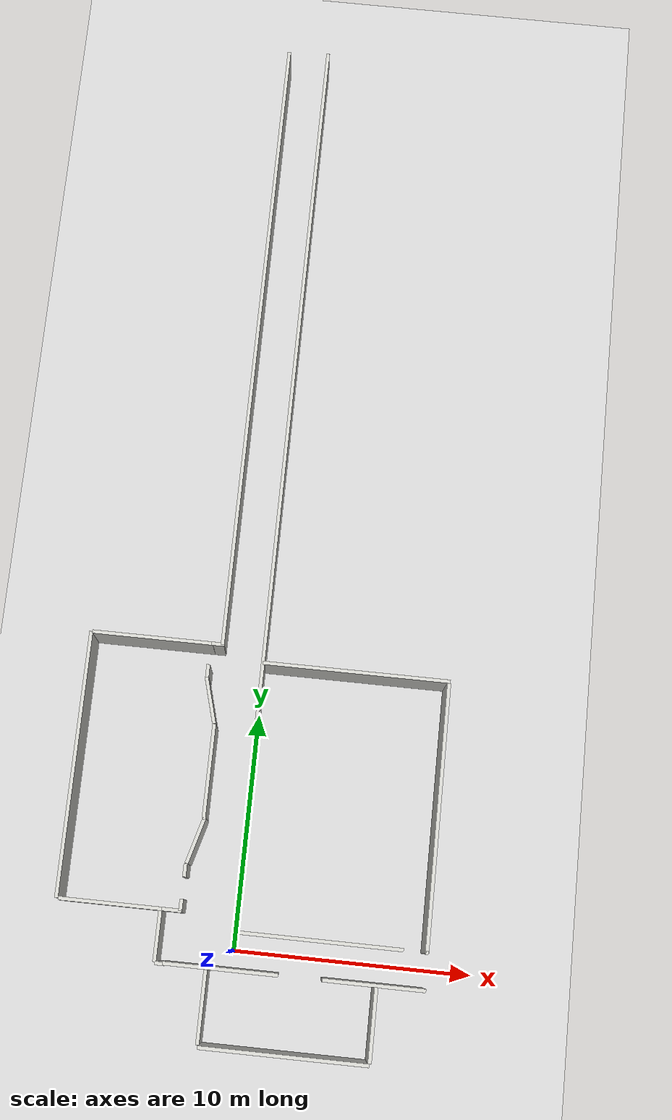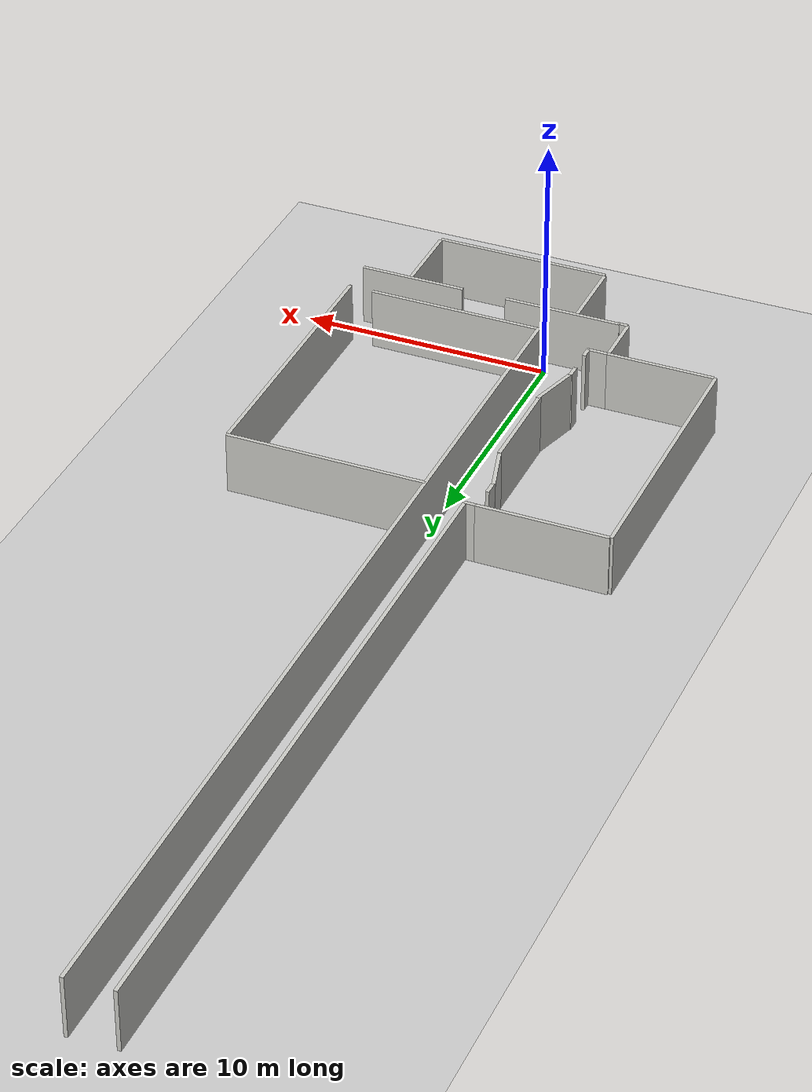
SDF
<sdf version="1.6">
 <world name="default">
  <light name="sun" type="directional">
   <pose>0 0 10 0 -0 0</pose>
   <diffuse>0.8 0.8 0.8 1</diffuse>
   <specular>0.1 0.1 0.1 1</specular>
   <attenuation>
    <range>1000</range>
    <constant>0.9</constant>
    <linear>0.01</linear>
    <quadratic>0.001</quadratic>
   </attenuation>
   <direction>-0.5 0.5 -1</direction>
  </light>
  <model name="ground_plane">
   <static>1</static>
   <link name="link">
    <collision name="collision">
     <geometry><plane><normal>0 0 1</normal><size>100 100</size></plane></geometry>
     <surface><friction><ode><mu>100</mu><mu2>50</mu2></ode></friction></surface>
    </collision>
    <visual name="visual">
     <cast_shadows>0</cast_shadows>
     <geometry><plane><normal>0 0 1</normal><size>100 100</size></plane></geometry>
     <material>
      <script><uri>file://media/materials/scripts/gazebo.material</uri><name>Gazebo/Grey</name></script>
     </material>
    </visual>
   </link>
  </model>
  <gravity>0 0 -9.8</gravity>
  <magnetic_field>6e-06 2.3e-05 -4.2e-05</magnetic_field>
  <atmosphere type="adiabatic"/>
  <physics name="default_physics" default="0" type="ode">
   <max_step_size>0.001</max_step_size>
   <real_time_factor>1</real_time_factor>
   <real_time_update_rate>1000</real_time_update_rate>
  </physics>
  <scene><ambient>0.4 0.4 0.4 1</ambient><background>0.7 0.7 0.7 1</background><shadows>1</shadows></scene>
  <spherical_coordinates>
   <surface_model>EARTH_WGS84</surface_model>
   <latitude_deg>0</latitude_deg>
   <longitude_deg>0</longitude_deg>
   <elevation>0</elevation>
   <heading_deg>0</heading_deg>
  </spherical_coordinates>
  <model name="r">
   <link name="Wall_1">
    <pose>3.95 0.775 0 0 -0 3.14</pose>
    <inertial>
     <mass>1</mass>
     <inertia><ixx>1</ixx><ixy>0</ixy><ixz>0</ixz><iyy>1</iyy><iyz>0</iyz><izz>1</izz></inertia>
    </inertial>
    <visual name="Wall_1_Visual_0">
     <pose>-4 0 1.25 0 -0 0</pose>
     <geometry><box><size>0.1 0.15 2.5</size></box></geometry>
     <material>
      <script><uri>file://media/materials/scripts/gazebo.material</uri><name>Gazebo/CeilingTiled</name></script>
      <ambient>1 1 1 1</ambient>
      <shader type="pixel"><normal_map>__default__</normal_map></shader>
      <diffuse>1 1 1 1</diffuse>
      <specular>0 0 0 1</specular>
      <emissive>0 0 0 1</emissive>
     </material>
    </visual>
    <visual name="Wall_1_Visual_1">
     <pose>0.42166 0 1.25 0 -0 0</pose>
     <geometry><box><size>6.9 0.15 2.5</size></box></geometry>
     <material>
      <script><uri>file://media/materials/scripts/gazebo.material</uri><name>Gazebo/CeilingTiled</name></script>
      <ambient>1 1 1 1</ambient>
      <shader type="pixel"><normal_map>__default__</normal_map></shader>
      <diffuse>1 1 1 1</diffuse>
      <specular>0 0 0 1</specular>
      <emissive>0 0 0 1</emissive>
     </material>
    </visual>
    <collision name="Wall_1_Collision_0">
     <pose>-4 0 1.25 0 -0 0</pose>
     <geometry><box><size>0.1 0.15 2.5</size></box></geometry>
     <surface>
      <friction>
       <ode><mu>1</mu><mu2>1</mu2><fdir1>0 0 0</fdir1><slip1>0</slip1><slip2>0</slip2></ode>
       <torsional>
        <coefficient>1</coefficient>
        <patch_radius>0</patch_radius>
        <surface_radius>0</surface_radius>
        <use_patch_radius>1</use_patch_radius>
        <ode><slip>0</slip></ode>
       </torsional>
      </friction>
      <bounce><restitution_coefficient>0</restitution_coefficient><threshold>1e+06</threshold></bounce>
      <contact>
       <collide_without_contact>0</collide_without_contact>
       <collide_without_contact_bitmask>1</collide_without_contact_bitmask>
       <collide_bitmask>1</collide_bitmask>
       <ode>
        <soft_cfm>0</soft_cfm>
        <soft_erp>0.2</soft_erp>
        <kp>1e+13</kp>
        <kd>1</kd>
        <max_vel>0.01</max_vel>
        <min_depth>0</min_depth>
       </ode>
       <bullet>
        <split_impulse>1</split_impulse>
        <split_impulse_penetration_threshold>-0.01</split_impulse_penetration_threshold>
        <soft_cfm>0</soft_cfm>
        <soft_erp>0.2</soft_erp>
        <kp>1e+13</kp>
        <kd>1</kd>
       </bullet>
      </contact>
     </surface>
    </collision>
    <collision name="Wall_1_Collision_1">
     <pose>0.42166 0 1.25 0 -0 0</pose>
     <geometry><box><size>6.9 0.15 2.5</size></box></geometry>
     <surface>
      <friction>
       <ode><mu>1</mu><mu2>1</mu2><fdir1>0 0 0</fdir1><slip1>0</slip1><slip2>0</slip2></ode>
       <torsional>
        <coefficient>1</coefficient>
        <patch_radius>0</patch_radius>
        <surface_radius>0</surface_radius>
        <use_patch_radius>1</use_patch_radius>
        <ode><slip>0</slip></ode>
       </torsional>
      </friction>
      <bounce><restitution_coefficient>0</restitution_coefficient><threshold>1e+06</threshold></bounce>
      <contact>
       <collide_without_contact>0</collide_without_contact>
       <collide_without_contact_bitmask>1</collide_without_contact_bitmask>
       <collide_bitmask>1</collide_bitmask>
       <ode>
        <soft_cfm>0</soft_cfm>
        <soft_erp>0.2</soft_erp>
        <kp>1e+13</kp>
        <kd>1</kd>
        <max_vel>0.01</max_vel>
        <min_depth>0</min_depth>
       </ode>
       <bullet>
        <split_impulse>1</split_impulse>
        <split_impulse_penetration_threshold>-0.01</split_impulse_penetration_threshold>
        <soft_cfm>0</soft_cfm>
        <soft_erp>0.2</soft_erp>
        <kp>1e+13</kp>
        <kd>1</kd>
       </bullet>
      </contact>
     </surface>
    </collision>
   </link>
   <link name="Wall_2">
    <pose>3.1 -0.75 0 0 -0 3.14159</pose>
    <inertial>
     <mass>1</mass>
     <inertia><ixx>1</ixx><ixy>0</ixy><ixz>0</ixz><iyy>1</iyy><iyz>0</iyz><izz>1</izz></inertia>
    </inertial>
    <visual name="ModelPreview_1::Wall_2::visual_1">
     <pose>-2.8 0 1.25 0 -0 0</pose>
     <geometry><box><size>4.25 0.15 2.5</size></box></geometry>
     <material>
      <script><uri>file://media/materials/scripts/gazebo.material</uri><name>Gazebo/CeilingTiled</name></script>
      <ambient>1 1 1 1</ambient>
      <shader type="pixel"><normal_map>__default__</normal_map></shader>
      <diffuse>1 1 1 1</diffuse>
      <specular>0 0 0 1</specular>
      <emissive>0 0 0 1</emissive>
     </material>
    </visual>
    <visual name="Wall_2_Visual">
     <pose>3.5 0 1.25 0 -0 0</pose>
     <geometry><box><size>4.75 0.15 2.5</size></box></geometry>
     <material>
      <script><uri>file://media/materials/scripts/gazebo.material</uri><name>Gazebo/CeilingTiled</name></script>
      <ambient>1 1 1 1</ambient>
      <shader type="pixel"><normal_map>__default__</normal_map></shader>
      <diffuse>1 1 1 1</diffuse>
      <specular>0 0 0 1</specular>
      <emissive>0 0 0 1</emissive>
     </material>
    </visual>
    <collision name="Wall_2_Collision">
     <pose>3.5 0 1.25 0 -0 0</pose>
     <geometry><box><size>4.75 0.15 2.5</size></box></geometry>
     <surface>
      <friction>
       <ode><mu>1</mu><mu2>1</mu2><fdir1>0 0 0</fdir1><slip1>0</slip1><slip2>0</slip2></ode>
       <torsional>
        <coefficient>1</coefficient>
        <patch_radius>0</patch_radius>
        <surface_radius>0</surface_radius>
        <use_patch_radius>1</use_patch_radius>
        <ode><slip>0</slip></ode>
       </torsional>
      </friction>
      <bounce><restitution_coefficient>0</restitution_coefficient><threshold>1e+06</threshold></bounce>
      <contact>
       <collide_without_contact>0</collide_without_contact>
       <collide_without_contact_bitmask>1</collide_without_contact_bitmask>
       <collide_bitmask>1</collide_bitmask>
       <ode>
        <soft_cfm>0</soft_cfm>
        <soft_erp>0.2</soft_erp>
        <kp>1e+13</kp>
        <kd>1</kd>
        <max_vel>0.01</max_vel>
        <min_depth>0</min_depth>
       </ode>
       <bullet>
        <split_impulse>1</split_impulse>
        <split_impulse_penetration_threshold>-0.01</split_impulse_penetration_threshold>
        <soft_cfm>0</soft_cfm>
        <soft_erp>0.2</soft_erp>
        <kp>1e+13</kp>
        <kd>1</kd>
       </bullet>
      </contact>
     </surface>
    </collision>
    <collision name="collision_1">
     <pose>-2.8 0 1.25 0 -0 0</pose>
     <geometry><box><size>4.25 0.15 2.5</size></box></geometry>
     <surface>
      <friction>
       <ode><mu>1</mu><mu2>1</mu2><fdir1>0 0 0</fdir1><slip1>0</slip1><slip2>0</slip2></ode>
       <torsional>
        <coefficient>1</coefficient>
        <patch_radius>0</patch_radius>
        <surface_radius>0</surface_radius>
        <use_patch_radius>1</use_patch_radius>
        <ode><slip>0</slip></ode>
       </torsional>
      </friction>
      <bounce><restitution_coefficient>0</restitution_coefficient><threshold>1e+06</threshold></bounce>
      <contact>
       <collide_without_contact>0</collide_without_contact>
       <collide_without_contact_bitmask>1</collide_without_contact_bitmask>
       <collide_bitmask>1</collide_bitmask>
       <ode>
        <soft_cfm>0</soft_cfm>
        <soft_erp>0.2</soft_erp>
        <kp>1e+13</kp>
        <kd>1</kd>
        <max_vel>0.01</max_vel>
        <min_depth>0</min_depth>
       </ode>
       <bullet>
        <split_impulse>1</split_impulse>
        <split_impulse_penetration_threshold>-0.01</split_impulse_penetration_threshold>
        <soft_cfm>0</soft_cfm>
        <soft_erp>0.2</soft_erp>
        <kp>1e+13</kp>
        <kd>1</kd>
       </bullet>
      </contact>
     </surface>
    </collision>
   </link>
   <link name="Wall_2_clone">
    <pose>-3.12 0.3 0 0 -0 1.57</pose>
    <inertial>
     <mass>1</mass>
     <inertia><ixx>1</ixx><ixy>0</ixy><ixz>0</ixz><iyy>1</iyy><iyz>0</iyz><izz>1</izz></inertia>
    </inertial>
    <visual name="visual_1">
     <pose>0 0 1.25 0 -0 0</pose>
     <geometry><box><size>2.05 0.15 2.5</size></box></geometry>
     <material>
      <script><uri>file://media/materials/scripts/gazebo.material</uri><name>Gazebo/CeilingTiled</name></script>
      <ambient>1 1 1 1</ambient>
      <shader type="pixel"><normal_map>__default__</normal_map></shader>
      <diffuse>1 1 1 1</diffuse>
      <specular>0 0 0 1</specular>
      <emissive>0 0 0 1</emissive>
     </material>
    </visual>
    <collision name="collision_1">
     <pose>0 0 1.25 0 -0 0</pose>
     <geometry><box><size>2.05 0.15 2.5</size></box></geometry>
     <surface>
      <friction>
       <ode><mu>1</mu><mu2>1</mu2><fdir1>0 0 0</fdir1><slip1>0</slip1><slip2>0</slip2></ode>
       <torsional>
        <coefficient>1</coefficient>
        <patch_radius>0</patch_radius>
        <surface_radius>0</surface_radius>
        <use_patch_radius>1</use_patch_radius>
        <ode><slip>0</slip></ode>
       </torsional>
      </friction>
      <bounce><restitution_coefficient>0</restitution_coefficient><threshold>1e+06</threshold></bounce>
      <contact>
       <collide_without_contact>0</collide_without_contact>
       <collide_without_contact_bitmask>1</collide_without_contact_bitmask>
       <collide_bitmask>1</collide_bitmask>
       <ode>
        <soft_cfm>0</soft_cfm>
        <soft_erp>0.2</soft_erp>
        <kp>1e+13</kp>
        <kd>1</kd>
        <max_vel>0.01</max_vel>
        <min_depth>0</min_depth>
       </ode>
       <bullet>
        <split_impulse>1</split_impulse>
        <split_impulse_penetration_threshold>-0.01</split_impulse_penetration_threshold>
        <soft_cfm>0</soft_cfm>
        <soft_erp>0.2</soft_erp>
        <kp>1e+13</kp>
        <kd>1</kd>
       </bullet>
      </contact>
     </surface>
    </collision>
   </link>
   <link name="Wall_2_clone_clone">
    <pose>-2.67 1.4 0 0 -0 0</pose>
    <inertial>
     <mass>1</mass>
     <inertia><ixx>1</ixx><ixy>0</ixy><ixz>0</ixz><iyy>1</iyy><iyz>0</iyz><izz>1</izz></inertia>
    </inertial>
    <visual name="visual_1">
     <pose>0 0 1.25 0 -0 0</pose>
     <geometry><box><size>0.85 0.15 2.5</size></box></geometry>
     <material>
      <script><uri>file://media/materials/scripts/gazebo.material</uri><name>Gazebo/CeilingTiled</name></script>
      <ambient>1 1 1 1</ambient>
      <shader type="pixel"><normal_map>__default__</normal_map></shader>
      <diffuse>1 1 1 1</diffuse>
      <specular>0 0 0 1</specular>
      <emissive>0 0 0 1</emissive>
     </material>
    </visual>
    <collision name="collision_1">
     <pose>0 0 1.25 0 -0 0</pose>
     <geometry><box><size>0.85 0.15 2.5</size></box></geometry>
     <surface>
      <friction>
       <ode><mu>1</mu><mu2>1</mu2><fdir1>0 0 0</fdir1><slip1>0</slip1><slip2>0</slip2></ode>
       <torsional>
        <coefficient>1</coefficient>
        <patch_radius>0</patch_radius>
        <surface_radius>0</surface_radius>
        <use_patch_radius>1</use_patch_radius>
        <ode><slip>0</slip></ode>
       </torsional>
      </friction>
      <bounce><restitution_coefficient>0</restitution_coefficient><threshold>1e+06</threshold></bounce>
      <contact>
       <collide_without_contact>0</collide_without_contact>
       <collide_without_contact_bitmask>1</collide_without_contact_bitmask>
       <collide_bitmask>1</collide_bitmask>
       <ode>
        <soft_cfm>0</soft_cfm>
        <soft_erp>0.2</soft_erp>
        <kp>1e+13</kp>
        <kd>1</kd>
        <max_vel>0.01</max_vel>
        <min_depth>0</min_depth>
       </ode>
       <bullet>
        <split_impulse>1</split_impulse>
        <split_impulse_penetration_threshold>-0.01</split_impulse_penetration_threshold>
        <soft_cfm>0</soft_cfm>
        <soft_erp>0.2</soft_erp>
        <kp>1e+13</kp>
        <kd>1</kd>
       </bullet>
      </contact>
     </surface>
    </collision>
   </link>
   <link name="Wall_2_clone_clone_0_clone">
    <pose>-1 -2.3 0 0 -0 1.57</pose>
    <inertial>
     <mass>1</mass>
     <inertia><ixx>1</ixx><ixy>0</ixy><ixz>0</ixz><iyy>1</iyy><iyz>0</iyz><izz>1</izz></inertia>
    </inertial>
    <visual name="visual_1">
     <pose>0 0 1.25 0 -0 0</pose>
     <geometry><box><size>3 0.15 2.5</size></box></geometry>
     <material>
      <script><uri>file://media/materials/scripts/gazebo.material</uri><name>Gazebo/CeilingTiled</name></script>
      <ambient>1 1 1 1</ambient>
      <shader type="pixel"><normal_map>__default__</normal_map></shader>
      <diffuse>1 1 1 1</diffuse>
      <specular>0 0 0 1</specular>
      <emissive>0 0 0 1</emissive>
     </material>
    </visual>
    <collision name="collision_1">
     <pose>0 0 1.25 0 -0 0</pose>
     <geometry><box><size>3 0.15 2.5</size></box></geometry>
     <surface>
      <friction>
       <ode><mu>1</mu><mu2>1</mu2><fdir1>0 0 0</fdir1><slip1>0</slip1><slip2>0</slip2></ode>
       <torsional>
        <coefficient>1</coefficient>
        <patch_radius>0</patch_radius>
        <surface_radius>0</surface_radius>
        <use_patch_radius>1</use_patch_radius>
        <ode><slip>0</slip></ode>
       </torsional>
      </friction>
      <bounce><restitution_coefficient>0</restitution_coefficient><threshold>1e+06</threshold></bounce>
      <contact>
       <collide_without_contact>0</collide_without_contact>
       <collide_without_contact_bitmask>1</collide_without_contact_bitmask>
       <collide_bitmask>1</collide_bitmask>
       <ode>
        <soft_cfm>0</soft_cfm>
        <soft_erp>0.2</soft_erp>
        <kp>1e+13</kp>
        <kd>1</kd>
        <max_vel>0.01</max_vel>
        <min_depth>0</min_depth>
       </ode>
       <bullet>
        <split_impulse>1</split_impulse>
        <split_impulse_penetration_threshold>-0.01</split_impulse_penetration_threshold>
        <soft_cfm>0</soft_cfm>
        <soft_erp>0.2</soft_erp>
        <kp>1e+13</kp>
        <kd>1</kd>
       </bullet>
      </contact>
     </surface>
    </collision>
   </link>
   <link name="Wall_2_clone_clone_0_clone_0">
    <pose>6 -2.31439 0 0 -0 1.57</pose>
    <inertial>
     <mass>1</mass>
     <inertia><ixx>1</ixx><ixy>0</ixy><ixz>0</ixz><iyy>1</iyy><iyz>0</iyz><izz>1</izz></inertia>
    </inertial>
    <visual name="visual_1">
     <pose>0 0 1.25 0 -0 0</pose>
     <geometry><box><size>3 0.15 2.5</size></box></geometry>
     <material>
      <script><uri>file://media/materials/scripts/gazebo.material</uri><name>Gazebo/CeilingTiled</name></script>
      <ambient>1 1 1 1</ambient>
      <shader type="pixel"><normal_map>__default__</normal_map></shader>
      <diffuse>1 1 1 1</diffuse>
      <specular>0 0 0 1</specular>
      <emissive>0 0 0 1</emissive>
     </material>
    </visual>
    <collision name="collision_1">
     <pose>0 0 1.25 0 -0 0</pose>
     <geometry><box><size>3 0.15 2.5</size></box></geometry>
     <surface>
      <friction>
       <ode><mu>1</mu><mu2>1</mu2><fdir1>0 0 0</fdir1><slip1>0</slip1><slip2>0</slip2></ode>
       <torsional>
        <coefficient>1</coefficient>
        <patch_radius>0</patch_radius>
        <surface_radius>0</surface_radius>
        <use_patch_radius>1</use_patch_radius>
        <ode><slip>0</slip></ode>
       </torsional>
      </friction>
      <bounce><restitution_coefficient>0</restitution_coefficient><threshold>1e+06</threshold></bounce>
      <contact>
       <collide_without_contact>0</collide_without_contact>
       <collide_without_contact_bitmask>1</collide_without_contact_bitmask>
       <collide_bitmask>1</collide_bitmask>
       <ode>
        <soft_cfm>0</soft_cfm>
        <soft_erp>0.2</soft_erp>
        <kp>1e+13</kp>
        <kd>1</kd>
        <max_vel>0.01</max_vel>
        <min_depth>0</min_depth>
       </ode>
       <bullet>
        <split_impulse>1</split_impulse>
        <split_impulse_penetration_threshold>-0.01</split_impulse_penetration_threshold>
        <soft_cfm>0</soft_cfm>
        <soft_erp>0.2</soft_erp>
        <kp>1e+13</kp>
        <kd>1</kd>
       </bullet>
      </contact>
     </surface>
    </collision>
   </link>
   <link name="Wall_2_clone_clone_clone">
    <pose>-2.3 1.6 0 0 -0 1.57</pose>
    <inertial>
     <mass>1</mass>
     <inertia><ixx>1</ixx><ixy>0</ixy><ixz>0</ixz><iyy>1</iyy><iyz>0</iyz><izz>1</izz></inertia>
    </inertial>
    <visual name="visual_1">
     <pose>0 0 1.25 0 -0 0</pose>
     <geometry><box><size>0.55 0.15 2.5</size></box></geometry>
     <material>
      <script><uri>file://media/materials/scripts/gazebo.material</uri><name>Gazebo/CeilingTiled</name></script>
      <ambient>1 1 1 1</ambient>
      <shader type="pixel"><normal_map>__default__</normal_map></shader>
      <diffuse>1 1 1 1</diffuse>
      <specular>0 0 0 1</specular>
      <emissive>0 0 0 1</emissive>
     </material>
    </visual>
    <collision name="collision_1">
     <pose>0 0 1.25 0 -0 0</pose>
     <geometry><box><size>0.55 0.15 2.5</size></box></geometry>
     <surface>
      <friction>
       <ode><mu>1</mu><mu2>1</mu2><fdir1>0 0 0</fdir1><slip1>0</slip1><slip2>0</slip2></ode>
       <torsional>
        <coefficient>1</coefficient>
        <patch_radius>0</patch_radius>
        <surface_radius>0</surface_radius>
        <use_patch_radius>1</use_patch_radius>
        <ode><slip>0</slip></ode>
       </torsional>
      </friction>
      <bounce><restitution_coefficient>0</restitution_coefficient><threshold>1e+06</threshold></bounce>
      <contact>
       <collide_without_contact>0</collide_without_contact>
       <collide_without_contact_bitmask>1</collide_without_contact_bitmask>
       <collide_bitmask>1</collide_bitmask>
       <ode>
        <soft_cfm>0</soft_cfm>
        <soft_erp>0.2</soft_erp>
        <kp>1e+13</kp>
        <kd>1</kd>
        <max_vel>0.01</max_vel>
        <min_depth>0</min_depth>
       </ode>
       <bullet>
        <split_impulse>1</split_impulse>
        <split_impulse_penetration_threshold>-0.01</split_impulse_penetration_threshold>
        <soft_cfm>0</soft_cfm>
        <soft_erp>0.2</soft_erp>
        <kp>1e+13</kp>
        <kd>1</kd>
       </bullet>
      </contact>
     </surface>
    </collision>
   </link>
   <link name="Wall_2_clone_clone_clone_0">
    <pose>-2.9 -0.77664 0 0 -0 0</pose>
    <inertial>
     <mass>1</mass>
     <inertia><ixx>1</ixx><ixy>0</ixy><ixz>0</ixz><iyy>1</iyy><iyz>0</iyz><izz>1</izz></inertia>
    </inertial>
    <visual name="visual_1">
     <pose>0 0 1.25 0 -0 0</pose>
     <geometry><box><size>0.4 0.15 2.5</size></box></geometry>
     <material>
      <script><uri>file://media/materials/scripts/gazebo.material</uri><name>Gazebo/CeilingTiled</name></script>
      <ambient>1 1 1 1</ambient>
      <shader type="pixel"><normal_map>__default__</normal_map></shader>
      <diffuse>1 1 1 1</diffuse>
      <specular>0 0 0 1</specular>
      <emissive>0 0 0 1</emissive>
     </material>
    </visual>
    <collision name="collision_1">
     <pose>0 0 1.25 0 -0 0</pose>
     <geometry><box><size>0.4 0.15 2.5</size></box></geometry>
     <surface>
      <friction>
       <ode><mu>1</mu><mu2>1</mu2><fdir1>0 0 0</fdir1><slip1>0</slip1><slip2>0</slip2></ode>
       <torsional>
        <coefficient>1</coefficient>
        <patch_radius>0</patch_radius>
        <surface_radius>0</surface_radius>
        <use_patch_radius>1</use_patch_radius>
        <ode><slip>0</slip></ode>
       </torsional>
      </friction>
      <bounce><restitution_coefficient>0</restitution_coefficient><threshold>1e+06</threshold></bounce>
      <contact>
       <collide_without_contact>0</collide_without_contact>
       <collide_without_contact_bitmask>1</collide_without_contact_bitmask>
       <collide_bitmask>1</collide_bitmask>
       <ode>
        <soft_cfm>0</soft_cfm>
        <soft_erp>0.2</soft_erp>
        <kp>1e+13</kp>
        <kd>1</kd>
        <max_vel>0.01</max_vel>
        <min_depth>0</min_depth>
       </ode>
       <bullet>
        <split_impulse>1</split_impulse>
        <split_impulse_penetration_threshold>-0.01</split_impulse_penetration_threshold>
        <soft_cfm>0</soft_cfm>
        <soft_erp>0.2</soft_erp>
        <kp>1e+13</kp>
        <kd>1</kd>
       </bullet>
      </contact>
     </surface>
    </collision>
   </link>
   <link name="Wall_2_clone_clone_clone_1">
    <pose>2.5 -3.89141 0 0 -0 0</pose>
    <inertial>
     <mass>1</mass>
     <inertia><ixx>1</ixx><ixy>0</ixy><ixz>0</ixz><iyy>1</iyy><iyz>0</iyz><izz>1</izz></inertia>
    </inertial>
    <visual name="visual_1">
     <pose>0 0 1.25 0 -0 0</pose>
     <geometry><box><size>7 0.15 2.5</size></box></geometry>
     <material>
      <script><uri>file://media/materials/scripts/gazebo.material</uri><name>Gazebo/CeilingTiled</name></script>
      <ambient>1 1 1 1</ambient>
      <shader type="pixel"><normal_map>__default__</normal_map></shader>
      <diffuse>1 1 1 1</diffuse>
      <specular>0 0 0 1</specular>
      <emissive>0 0 0 1</emissive>
     </material>
    </visual>
    <collision name="collision_1">
     <pose>0 0 1.25 0 -0 0</pose>
     <geometry><box><size>7 0.15 2.5</size></box></geometry>
     <surface>
      <friction>
       <ode><mu>1</mu><mu2>1</mu2><fdir1>0 0 0</fdir1><slip1>0</slip1><slip2>0</slip2></ode>
       <torsional>
        <coefficient>1</coefficient>
        <patch_radius>0</patch_radius>
        <surface_radius>0</surface_radius>
        <use_patch_radius>1</use_patch_radius>
        <ode><slip>0</slip></ode>
       </torsional>
      </friction>
      <bounce><restitution_coefficient>0</restitution_coefficient><threshold>1e+06</threshold></bounce>
      <contact>
       <collide_without_contact>0</collide_without_contact>
       <collide_without_contact_bitmask>1</collide_without_contact_bitmask>
       <collide_bitmask>1</collide_bitmask>
       <ode>
        <soft_cfm>0</soft_cfm>
        <soft_erp>0.2</soft_erp>
        <kp>1e+13</kp>
        <kd>1</kd>
        <max_vel>0.01</max_vel>
        <min_depth>0</min_depth>
       </ode>
       <bullet>
        <split_impulse>1</split_impulse>
        <split_impulse_penetration_threshold>-0.01</split_impulse_penetration_threshold>
        <soft_cfm>0</soft_cfm>
        <soft_erp>0.2</soft_erp>
        <kp>1e+13</kp>
        <kd>1</kd>
       </bullet>
      </contact>
     </surface>
    </collision>
   </link>
   <link name="Wall_2_clone_clone_clone_1_clone">
    <pose>-4.8 12.6 0 0 -0 0</pose>
    <inertial>
     <mass>1</mass>
     <inertia><ixx>1</ixx><ixy>0</ixy><ixz>0</ixz><iyy>1</iyy><iyz>0</iyz><izz>1</izz></inertia>
    </inertial>
    <visual name="visual_1">
     <pose>0 0 1.25 0 -0 0</pose>
     <geometry><box><size>5.2 0.15 2.5</size></box></geometry>
     <material>
      <script><uri>file://media/materials/scripts/gazebo.material</uri><name>Gazebo/CeilingTiled</name></script>
      <ambient>1 1 1 1</ambient>
      <shader type="pixel"><normal_map>__default__</normal_map></shader>
      <diffuse>1 1 1 1</diffuse>
      <specular>0 0 0 1</specular>
      <emissive>0 0 0 1</emissive>
     </material>
    </visual>
    <collision name="collision_1">
     <pose>0 0 1.25 0 -0 0</pose>
     <geometry><box><size>5.2 0.15 2.5</size></box></geometry>
     <surface>
      <friction>
       <ode><mu>1</mu><mu2>1</mu2><fdir1>0 0 0</fdir1><slip1>0</slip1><slip2>0</slip2></ode>
       <torsional>
        <coefficient>1</coefficient>
        <patch_radius>0</patch_radius>
        <surface_radius>0</surface_radius>
        <use_patch_radius>1</use_patch_radius>
        <ode><slip>0</slip></ode>
       </torsional>
      </friction>
      <bounce><restitution_coefficient>0</restitution_coefficient><threshold>1e+06</threshold></bounce>
      <contact>
       <collide_without_contact>0</collide_without_contact>
       <collide_without_contact_bitmask>1</collide_without_contact_bitmask>
       <collide_bitmask>1</collide_bitmask>
       <ode>
        <soft_cfm>0</soft_cfm>
        <soft_erp>0.2</soft_erp>
        <kp>1e+13</kp>
        <kd>1</kd>
        <max_vel>0.01</max_vel>
        <min_depth>0</min_depth>
       </ode>
       <bullet>
        <split_impulse>1</split_impulse>
        <split_impulse_penetration_threshold>-0.01</split_impulse_penetration_threshold>
        <soft_cfm>0</soft_cfm>
        <soft_erp>0.2</soft_erp>
        <kp>1e+13</kp>
        <kd>1</kd>
       </bullet>
      </contact>
     </surface>
    </collision>
   </link>
   <link name="Wall_2_clone_clone_clone_1_clone_clone">
    <pose>-5.21878 1.4 0 0 -0 0</pose>
    <inertial>
     <mass>1</mass>
     <inertia><ixx>1</ixx><ixy>0</ixy><ixz>0</ixz><iyy>1</iyy><iyz>0</iyz><izz>1</izz></inertia>
    </inertial>
    <visual name="visual_1">
     <pose>0 0 1.25 0 -0 0</pose>
     <geometry><box><size>4.3 0.15 2.5</size></box></geometry>
     <material>
      <script><uri>file://media/materials/scripts/gazebo.material</uri><name>Gazebo/CeilingTiled</name></script>
      <ambient>1 1 1 1</ambient>
      <shader type="pixel"><normal_map>__default__</normal_map></shader>
      <diffuse>1 1 1 1</diffuse>
      <specular>0 0 0 1</specular>
      <emissive>0 0 0 1</emissive>
     </material>
    </visual>
    <collision name="collision_1">
     <pose>0 0 1.25 0 -0 0</pose>
     <geometry><box><size>4.3 0.15 2.5</size></box></geometry>
     <surface>
      <friction>
       <ode><mu>1</mu><mu2>1</mu2><fdir1>0 0 0</fdir1><slip1>0</slip1><slip2>0</slip2></ode>
       <torsional>
        <coefficient>1</coefficient>
        <patch_radius>0</patch_radius>
        <surface_radius>0</surface_radius>
        <use_patch_radius>1</use_patch_radius>
        <ode><slip>0</slip></ode>
       </torsional>
      </friction>
      <bounce><restitution_coefficient>0</restitution_coefficient><threshold>1e+06</threshold></bounce>
      <contact>
       <collide_without_contact>0</collide_without_contact>
       <collide_without_contact_bitmask>1</collide_without_contact_bitmask>
       <collide_bitmask>1</collide_bitmask>
       <ode>
        <soft_cfm>0</soft_cfm>
        <soft_erp>0.2</soft_erp>
        <kp>1e+13</kp>
        <kd>1</kd>
        <max_vel>0.01</max_vel>
        <min_depth>0</min_depth>
       </ode>
       <bullet>
        <split_impulse>1</split_impulse>
        <split_impulse_penetration_threshold>-0.01</split_impulse_penetration_threshold>
        <soft_cfm>0</soft_cfm>
        <soft_erp>0.2</soft_erp>
        <kp>1e+13</kp>
        <kd>1</kd>
       </bullet>
      </contact>
     </surface>
    </collision>
   </link>
   <link name="Wall_2_clone_clone_clone_1_clone_clone_0">
    <pose>4 12 0 0 -0 0</pose>
    <inertial>
     <mass>1</mass>
     <inertia><ixx>1</ixx><ixy>0</ixy><ixz>0</ixz><iyy>1</iyy><iyz>0</iyz><izz>1</izz></inertia>
    </inertial>
    <visual name="visual_1">
     <pose>0 0 1.25 0 -0 0</pose>
     <geometry><box><size>8 0.15 2.5</size></box></geometry>
     <material>
      <script><uri>file://media/materials/scripts/gazebo.material</uri><name>Gazebo/CeilingTiled</name></script>
      <ambient>1 1 1 1</ambient>
      <shader type="pixel"><normal_map>__default__</normal_map></shader>
      <diffuse>1 1 1 1</diffuse>
      <specular>0 0 0 1</specular>
      <emissive>0 0 0 1</emissive>
     </material>
    </visual>
    <collision name="collision_1">
     <pose>0 0 1.25 0 -0 0</pose>
     <geometry><box><size>8 0.15 2.5</size></box></geometry>
     <surface>
      <friction>
       <ode><mu>1</mu><mu2>1</mu2><fdir1>0 0 0</fdir1><slip1>0</slip1><slip2>0</slip2></ode>
       <torsional>
        <coefficient>1</coefficient>
        <patch_radius>0</patch_radius>
        <surface_radius>0</surface_radius>
        <use_patch_radius>1</use_patch_radius>
        <ode><slip>0</slip></ode>
       </torsional>
      </friction>
      <bounce><restitution_coefficient>0</restitution_coefficient><threshold>1e+06</threshold></bounce>
      <contact>
       <collide_without_contact>0</collide_without_contact>
       <collide_without_contact_bitmask>1</collide_without_contact_bitmask>
       <collide_bitmask>1</collide_bitmask>
       <ode>
        <soft_cfm>0</soft_cfm>
        <soft_erp>0.2</soft_erp>
        <kp>1e+13</kp>
        <kd>1</kd>
        <max_vel>0.01</max_vel>
        <min_depth>0</min_depth>
       </ode>
       <bullet>
        <split_impulse>1</split_impulse>
        <split_impulse_penetration_threshold>-0.01</split_impulse_penetration_threshold>
        <soft_cfm>0</soft_cfm>
        <soft_erp>0.2</soft_erp>
        <kp>1e+13</kp>
        <kd>1</kd>
       </bullet>
      </contact>
     </surface>
    </collision>
   </link>
   <link name="Wall_2_clone_clone_clone_clone">
    <pose>-2.3 3.05 0 0 -0 1.57</pose>
    <inertial>
     <mass>1</mass>
     <inertia><ixx>1</ixx><ixy>0</ixy><ixz>0</ixz><iyy>1</iyy><iyz>0</iyz><izz>1</izz></inertia>
    </inertial>
    <visual name="visual_1">
     <pose>0 0 1.25 0 -0 0</pose>
     <geometry><box><size>0.55 0.15 2.5</size></box></geometry>
     <material>
      <script><uri>file://media/materials/scripts/gazebo.material</uri><name>Gazebo/CeilingTiled</name></script>
      <ambient>1 1 1 1</ambient>
      <shader type="pixel"><normal_map>__default__</normal_map></shader>
      <diffuse>1 1 1 1</diffuse>
      <specular>0 0 0 1</specular>
      <emissive>0 0 0 1</emissive>
     </material>
    </visual>
    <collision name="collision_1">
     <pose>0 0 1.25 0 -0 0</pose>
     <geometry><box><size>0.5 0.15 2.5</size></box></geometry>
     <surface>
      <friction>
       <ode><mu>1</mu><mu2>1</mu2><fdir1>0 0 0</fdir1><slip1>0</slip1><slip2>0</slip2></ode>
       <torsional>
        <coefficient>1</coefficient>
        <patch_radius>0</patch_radius>
        <surface_radius>0</surface_radius>
        <use_patch_radius>1</use_patch_radius>
        <ode><slip>0</slip></ode>
       </torsional>
      </friction>
      <bounce><restitution_coefficient>0</restitution_coefficient><threshold>1e+06</threshold></bounce>
      <contact>
       <collide_without_contact>0</collide_without_contact>
       <collide_without_contact_bitmask>1</collide_without_contact_bitmask>
       <collide_bitmask>1</collide_bitmask>
       <ode>
        <soft_cfm>0</soft_cfm>
        <soft_erp>0.2</soft_erp>
        <kp>1e+13</kp>
        <kd>1</kd>
        <max_vel>0.01</max_vel>
        <min_depth>0</min_depth>
       </ode>
       <bullet>
        <split_impulse>1</split_impulse>
        <split_impulse_penetration_threshold>-0.01</split_impulse_penetration_threshold>
        <soft_cfm>0</soft_cfm>
        <soft_erp>0.2</soft_erp>
        <kp>1e+13</kp>
        <kd>1</kd>
       </bullet>
      </contact>
     </surface>
    </collision>
   </link>
   <link name="Wall_2_clone_clone_clone_clone_0">
    <pose>-2.3 11.414 0 0 -0 1.57</pose>
    <inertial>
     <mass>1</mass>
     <inertia><ixx>1</ixx><ixy>0</ixy><ixz>0</ixz><iyy>1</iyy><iyz>0</iyz><izz>1</izz></inertia>
    </inertial>
    <visual name="visual_1">
     <pose>0 0 1.25 0 -0 0</pose>
     <geometry><box><size>0.55 0.15 2.5</size></box></geometry>
     <material>
      <script><uri>file://media/materials/scripts/gazebo.material</uri><name>Gazebo/CeilingTiled</name></script>
      <ambient>1 1 1 1</ambient>
      <shader type="pixel"><normal_map>__default__</normal_map></shader>
      <diffuse>1 1 1 1</diffuse>
      <specular>0 0 0 1</specular>
      <emissive>0 0 0 1</emissive>
     </material>
    </visual>
    <collision name="collision_1">
     <pose>0 0 1.25 0 -0 0</pose>
     <geometry><box><size>0.55 0.15 2.5</size></box></geometry>
     <surface>
      <friction>
       <ode><mu>1</mu><mu2>1</mu2><fdir1>0 0 0</fdir1><slip1>0</slip1><slip2>0</slip2></ode>
       <torsional>
        <coefficient>1</coefficient>
        <patch_radius>0</patch_radius>
        <surface_radius>0</surface_radius>
        <use_patch_radius>1</use_patch_radius>
        <ode><slip>0</slip></ode>
       </torsional>
      </friction>
      <bounce><restitution_coefficient>0</restitution_coefficient><threshold>1e+06</threshold></bounce>
      <contact>
       <collide_without_contact>0</collide_without_contact>
       <collide_without_contact_bitmask>1</collide_without_contact_bitmask>
       <collide_bitmask>1</collide_bitmask>
       <ode>
        <soft_cfm>0</soft_cfm>
        <soft_erp>0.2</soft_erp>
        <kp>1e+13</kp>
        <kd>1</kd>
        <max_vel>0.01</max_vel>
        <min_depth>0</min_depth>
       </ode>
       <bullet>
        <split_impulse>1</split_impulse>
        <split_impulse_penetration_threshold>-0.01</split_impulse_penetration_threshold>
        <soft_cfm>0</soft_cfm>
        <soft_erp>0.2</soft_erp>
        <kp>1e+13</kp>
        <kd>1</kd>
       </bullet>
      </contact>
     </surface>
    </collision>
   </link>
   <link name="Wall_2_clone_clone_clone_clone_0_clone">
    <pose>-2 12.6 0 0 -0 0</pose>
    <inertial>
     <mass>1</mass>
     <inertia><ixx>1</ixx><ixy>0</ixy><ixz>0</ixz><iyy>1</iyy><iyz>0</iyz><izz>1</izz></inertia>
    </inertial>
    <visual name="visual_1">
     <pose>0 0 1.25 0 -0 0</pose>
     <geometry><box><size>0.55 0.15 2.5</size></box></geometry>
     <material>
      <script><uri>file://media/materials/scripts/gazebo.material</uri><name>Gazebo/CeilingTiled</name></script>
      <ambient>1 1 1 1</ambient>
      <shader type="pixel"><normal_map>__default__</normal_map></shader>
      <diffuse>1 1 1 1</diffuse>
      <specular>0 0 0 1</specular>
      <emissive>0 0 0 1</emissive>
     </material>
    </visual>
    <collision name="collision_1">
     <pose>0 0 1.25 0 -0 0</pose>
     <geometry><box><size>0.55 0.15 2.5</size></box></geometry>
     <surface>
      <friction>
       <ode><mu>1</mu><mu2>1</mu2><fdir1>0 0 0</fdir1><slip1>0</slip1><slip2>0</slip2></ode>
       <torsional>
        <coefficient>1</coefficient>
        <patch_radius>0</patch_radius>
        <surface_radius>0</surface_radius>
        <use_patch_radius>1</use_patch_radius>
        <ode><slip>0</slip></ode>
       </torsional>
      </friction>
      <bounce><restitution_coefficient>0</restitution_coefficient><threshold>1e+06</threshold></bounce>
      <contact>
       <collide_without_contact>0</collide_without_contact>
       <collide_without_contact_bitmask>1</collide_without_contact_bitmask>
       <collide_bitmask>1</collide_bitmask>
       <ode>
        <soft_cfm>0</soft_cfm>
        <soft_erp>0.2</soft_erp>
        <kp>1e+13</kp>
        <kd>1</kd>
        <max_vel>0.01</max_vel>
        <min_depth>0</min_depth>
       </ode>
       <bullet>
        <split_impulse>1</split_impulse>
        <split_impulse_penetration_threshold>-0.01</split_impulse_penetration_threshold>
        <soft_cfm>0</soft_cfm>
        <soft_erp>0.2</soft_erp>
        <kp>1e+13</kp>
        <kd>1</kd>
       </bullet>
      </contact>
     </surface>
    </collision>
   </link>
   <link name="Wall_2_clone_clone_clone_clone_clone">
    <pose>-2 4.3 0 0 -0 1.3</pose>
    <inertial>
     <mass>1</mass>
     <inertia><ixx>1</ixx><ixy>0</ixy><ixz>0</ixz><iyy>1</iyy><iyz>0</iyz><izz>1</izz></inertia>
    </inertial>
    <visual name="visual_1">
     <pose>0 0 1.25 0 -0 0</pose>
     <geometry><box><size>2 0.15 2.5</size></box></geometry>
     <material>
      <script><uri>file://media/materials/scripts/gazebo.material</uri><name>Gazebo/CeilingTiled</name></script>
      <ambient>1 1 1 1</ambient>
      <shader type="pixel"><normal_map>__default__</normal_map></shader>
      <diffuse>1 1 1 1</diffuse>
      <specular>0 0 0 1</specular>
      <emissive>0 0 0 1</emissive>
     </material>
    </visual>
    <collision name="collision_1">
     <pose>0 0 1.25 0 -0 0</pose>
     <geometry><box><size>2 0.15 2.5</size></box></geometry>
     <surface>
      <friction>
       <ode><mu>1</mu><mu2>1</mu2><fdir1>0 0 0</fdir1><slip1>0</slip1><slip2>0</slip2></ode>
       <torsional>
        <coefficient>1</coefficient>
        <patch_radius>0</patch_radius>
        <surface_radius>0</surface_radius>
        <use_patch_radius>1</use_patch_radius>
        <ode><slip>0</slip></ode>
       </torsional>
      </friction>
      <bounce><restitution_coefficient>0</restitution_coefficient><threshold>1e+06</threshold></bounce>
      <contact>
       <collide_without_contact>0</collide_without_contact>
       <collide_without_contact_bitmask>1</collide_without_contact_bitmask>
       <collide_bitmask>1</collide_bitmask>
       <ode>
        <soft_cfm>0</soft_cfm>
        <soft_erp>0.2</soft_erp>
        <kp>1e+13</kp>
        <kd>1</kd>
        <max_vel>0.01</max_vel>
        <min_depth>0</min_depth>
       </ode>
       <bullet>
        <split_impulse>1</split_impulse>
        <split_impulse_penetration_threshold>-0.01</split_impulse_penetration_threshold>
        <soft_cfm>0</soft_cfm>
        <soft_erp>0.2</soft_erp>
        <kp>1e+13</kp>
        <kd>1</kd>
       </bullet>
      </contact>
     </surface>
    </collision>
   </link>
   <link name="Wall_2_clone_clone_clone_clone_clone_clone">
    <pose>-1.77 7.2 0 0 -0 1.57</pose>
    <inertial>
     <mass>1</mass>
     <inertia><ixx>1</ixx><ixy>0</ixy><ixz>0</ixz><iyy>1</iyy><iyz>0</iyz><izz>1</izz></inertia>
    </inertial>
    <visual name="visual_1">
     <pose>0 0 1.25 0 -0 0</pose>
     <geometry><box><size>4 0.15 2.5</size></box></geometry>
     <material>
      <script><uri>file://media/materials/scripts/gazebo.material</uri><name>Gazebo/CeilingTiled</name></script>
      <ambient>1 1 1 1</ambient>
      <shader type="pixel"><normal_map>__default__</normal_map></shader>
      <diffuse>1 1 1 1</diffuse>
      <specular>0 0 0 1</specular>
      <emissive>0 0 0 1</emissive>
     </material>
    </visual>
    <collision name="collision_1">
     <pose>0 0 1.25 0 -0 0</pose>
     <geometry><box><size>4 0.15 2.5</size></box></geometry>
     <surface>
      <friction>
       <ode><mu>1</mu><mu2>1</mu2><fdir1>0 0 0</fdir1><slip1>0</slip1><slip2>0</slip2></ode>
       <torsional>
        <coefficient>1</coefficient>
        <patch_radius>0</patch_radius>
        <surface_radius>0</surface_radius>
        <use_patch_radius>1</use_patch_radius>
        <ode><slip>0</slip></ode>
       </torsional>
      </friction>
      <bounce><restitution_coefficient>0</restitution_coefficient><threshold>1e+06</threshold></bounce>
      <contact>
       <collide_without_contact>0</collide_without_contact>
       <collide_without_contact_bitmask>1</collide_without_contact_bitmask>
       <collide_bitmask>1</collide_bitmask>
       <ode>
        <soft_cfm>0</soft_cfm>
        <soft_erp>0.2</soft_erp>
        <kp>1e+13</kp>
        <kd>1</kd>
        <max_vel>0.01</max_vel>
        <min_depth>0</min_depth>
       </ode>
       <bullet>
        <split_impulse>1</split_impulse>
        <split_impulse_penetration_threshold>-0.01</split_impulse_penetration_threshold>
        <soft_cfm>0</soft_cfm>
        <soft_erp>0.2</soft_erp>
        <kp>1e+13</kp>
        <kd>1</kd>
       </bullet>
      </contact>
     </surface>
    </collision>
   </link>
   <link name="Wall_2_clone_clone_clone_clone_clone_clone_0">
    <pose>-2.05 10.1745 0 0 0 -1.3</pose>
    <inertial>
     <mass>1</mass>
     <inertia><ixx>1</ixx><ixy>0</ixy><ixz>0</ixz><iyy>1</iyy><iyz>0</iyz><izz>1</izz></inertia>
    </inertial>
    <visual name="visual_1">
     <pose>0 0 1.25 0 -0 0</pose>
     <geometry><box><size>2 0.15 2.5</size></box></geometry>
     <material>
      <script><uri>file://media/materials/scripts/gazebo.material</uri><name>Gazebo/CeilingTiled</name></script>
      <ambient>1 1 1 1</ambient>
      <shader type="pixel"><normal_map>__default__</normal_map></shader>
      <diffuse>1 1 1 1</diffuse>
      <specular>0 0 0 1</specular>
      <emissive>0 0 0 1</emissive>
     </material>
    </visual>
    <collision name="collision_1">
     <pose>0 0 1.25 0 -0 0</pose>
     <geometry><box><size>2 0.15 2.5</size></box></geometry>
     <surface>
      <friction>
       <ode><mu>1</mu><mu2>1</mu2><fdir1>0 0 0</fdir1><slip1>0</slip1><slip2>0</slip2></ode>
       <torsional>
        <coefficient>1</coefficient>
        <patch_radius>0</patch_radius>
        <surface_radius>0</surface_radius>
        <use_patch_radius>1</use_patch_radius>
        <ode><slip>0</slip></ode>
       </torsional>
      </friction>
      <bounce><restitution_coefficient>0</restitution_coefficient><threshold>1e+06</threshold></bounce>
      <contact>
       <collide_without_contact>0</collide_without_contact>
       <collide_without_contact_bitmask>1</collide_without_contact_bitmask>
       <collide_bitmask>1</collide_bitmask>
       <ode>
        <soft_cfm>0</soft_cfm>
        <soft_erp>0.2</soft_erp>
        <kp>1e+13</kp>
        <kd>1</kd>
        <max_vel>0.01</max_vel>
        <min_depth>0</min_depth>
       </ode>
       <bullet>
        <split_impulse>1</split_impulse>
        <split_impulse_penetration_threshold>-0.01</split_impulse_penetration_threshold>
        <soft_cfm>0</soft_cfm>
        <soft_erp>0.2</soft_erp>
        <kp>1e+13</kp>
        <kd>1</kd>
       </bullet>
      </contact>
     </surface>
    </collision>
   </link>
   <link name="Wall_2_clone_clone_clone_clone_clone_clone_clone">
    <pose>-7.44755 7 0 0 -0 1.57</pose>
    <inertial>
     <mass>1</mass>
     <inertia><ixx>1</ixx><ixy>0</ixy><ixz>0</ixz><iyy>1</iyy><iyz>0</iyz><izz>1</izz></inertia>
    </inertial>
    <visual name="visual_1">
     <pose>0 0 1.25 0 -0 0</pose>
     <geometry><box><size>11.2 0.15 2.5</size></box></geometry>
     <material>
      <script><uri>file://media/materials/scripts/gazebo.material</uri><name>Gazebo/CeilingTiled</name></script>
      <ambient>1 1 1 1</ambient>
      <shader type="pixel"><normal_map>__default__</normal_map></shader>
      <diffuse>1 1 1 1</diffuse>
      <specular>0 0 0 1</specular>
      <emissive>0 0 0 1</emissive>
     </material>
    </visual>
    <collision name="collision_1">
     <pose>0 0 1.25 0 -0 0</pose>
     <geometry><box><size>11.2 0.15 2.5</size></box></geometry>
     <surface>
      <friction>
       <ode><mu>1</mu><mu2>1</mu2><fdir1>0 0 0</fdir1><slip1>0</slip1><slip2>0</slip2></ode>
       <torsional>
        <coefficient>1</coefficient>
        <patch_radius>0</patch_radius>
        <surface_radius>0</surface_radius>
        <use_patch_radius>1</use_patch_radius>
        <ode><slip>0</slip></ode>
       </torsional>
      </friction>
      <bounce><restitution_coefficient>0</restitution_coefficient><threshold>1e+06</threshold></bounce>
      <contact>
       <collide_without_contact>0</collide_without_contact>
       <collide_without_contact_bitmask>1</collide_without_contact_bitmask>
       <collide_bitmask>1</collide_bitmask>
       <ode>
        <soft_cfm>0</soft_cfm>
        <soft_erp>0.2</soft_erp>
        <kp>1e+13</kp>
        <kd>1</kd>
        <max_vel>0.01</max_vel>
        <min_depth>0</min_depth>
       </ode>
       <bullet>
        <split_impulse>1</split_impulse>
        <split_impulse_penetration_threshold>-0.01</split_impulse_penetration_threshold>
        <soft_cfm>0</soft_cfm>
        <soft_erp>0.2</soft_erp>
        <kp>1e+13</kp>
        <kd>1</kd>
       </bullet>
      </contact>
     </surface>
    </collision>
   </link>
   <link name="Wall_2_clone_clone_clone_clone_clone_clone_clone_clone">
    <pose>7.95 6.32629 0 0 -0 1.57</pose>
    <inertial>
     <mass>1</mass>
     <inertia><ixx>1</ixx><ixy>0</ixy><ixz>0</ixz><iyy>1</iyy><iyz>0</iyz><izz>1</izz></inertia>
    </inertial>
    <visual name="visual_1">
     <pose>0 0 1.25 0 -0 0</pose>
     <geometry><box><size>11.2 0.15 2.5</size></box></geometry>
     <material>
      <script><uri>file://media/materials/scripts/gazebo.material</uri><name>Gazebo/CeilingTiled</name></script>
      <ambient>1 1 1 1</ambient>
      <shader type="pixel"><normal_map>__default__</normal_map></shader>
      <diffuse>1 1 1 1</diffuse>
      <specular>0 0 0 1</specular>
      <emissive>0 0 0 1</emissive>
     </material>
    </visual>
    <collision name="collision_1">
     <pose>0 0 1.25 0 -0 0</pose>
     <geometry><box><size>11.2 0.15 2.5</size></box></geometry>
     <surface>
      <friction>
       <ode><mu>1</mu><mu2>1</mu2><fdir1>0 0 0</fdir1><slip1>0</slip1><slip2>0</slip2></ode>
       <torsional>
        <coefficient>1</coefficient>
        <patch_radius>0</patch_radius>
        <surface_radius>0</surface_radius>
        <use_patch_radius>1</use_patch_radius>
        <ode><slip>0</slip></ode>
       </torsional>
      </friction>
      <bounce><restitution_coefficient>0</restitution_coefficient><threshold>1e+06</threshold></bounce>
      <contact>
       <collide_without_contact>0</collide_without_contact>
       <collide_without_contact_bitmask>1</collide_without_contact_bitmask>
       <collide_bitmask>1</collide_bitmask>
       <ode>
        <soft_cfm>0</soft_cfm>
        <soft_erp>0.2</soft_erp>
        <kp>1e+13</kp>
        <kd>1</kd>
        <max_vel>0.01</max_vel>
        <min_depth>0</min_depth>
       </ode>
       <bullet>
        <split_impulse>1</split_impulse>
        <split_impulse_penetration_threshold>-0.01</split_impulse_penetration_threshold>
        <soft_cfm>0</soft_cfm>
        <soft_erp>0.2</soft_erp>
        <kp>1e+13</kp>
        <kd>1</kd>
       </bullet>
      </contact>
     </surface>
    </collision>
   </link>
   <link name="Wall_3">
    <pose>0 20.7 0 0 -0 1.5708</pose>
    <inertial>
     <mass>1</mass>
     <inertia><ixx>1</ixx><ixy>0</ixy><ixz>0</ixz><iyy>1</iyy><iyz>0</iyz><izz>1</izz></inertia>
    </inertial>
    <visual name="Wall_3_Visual">
     <pose>0 0 1.25 0 -0 0</pose>
     <geometry><box><size>40 0.15 2.5</size></box></geometry>
     <material>
      <script><uri>file://media/materials/scripts/gazebo.material</uri><name>Gazebo/CeilingTiled</name></script>
      <ambient>1 1 1 1</ambient>
      <shader type="pixel"><normal_map>__default__</normal_map></shader>
      <diffuse>1 1 1 1</diffuse>
      <specular>0 0 0 1</specular>
      <emissive>0 0 0 1</emissive>
     </material>
    </visual>
    <collision name="Wall_3_Collision">
     <pose>0 0 1.25 0 -0 0</pose>
     <geometry><box><size>40 0.15 2.5</size></box></geometry>
     <surface>
      <friction>
       <ode><mu>1</mu><mu2>1</mu2><fdir1>0 0 0</fdir1><slip1>0</slip1><slip2>0</slip2></ode>
       <torsional>
        <coefficient>1</coefficient>
        <patch_radius>0</patch_radius>
        <surface_radius>0</surface_radius>
        <use_patch_radius>1</use_patch_radius>
        <ode><slip>0</slip></ode>
       </torsional>
      </friction>
      <bounce><restitution_coefficient>0</restitution_coefficient><threshold>1e+06</threshold></bounce>
      <contact>
       <collide_without_contact>0</collide_without_contact>
       <collide_without_contact_bitmask>1</collide_without_contact_bitmask>
       <collide_bitmask>1</collide_bitmask>
       <ode>
        <soft_cfm>0</soft_cfm>
        <soft_erp>0.2</soft_erp>
        <kp>1e+13</kp>
        <kd>1</kd>
        <max_vel>0.01</max_vel>
        <min_depth>0</min_depth>
       </ode>
       <bullet>
        <split_impulse>1</split_impulse>
        <split_impulse_penetration_threshold>-0.01</split_impulse_penetration_threshold>
        <soft_cfm>0</soft_cfm>
        <soft_erp>0.2</soft_erp>
        <kp>1e+13</kp>
        <kd>1</kd>
       </bullet>
      </contact>
     </surface>
    </collision>
   </link>
   <link name="Wall_3_clone">
    <pose>-1.8 26.6 0 0 -0 1.5708</pose>
    <inertial>
     <mass>1</mass>
     <inertia><ixx>1</ixx><ixy>0</ixy><ixz>0</ixz><iyy>1</iyy><iyz>0</iyz><izz>1</izz></inertia>
    </inertial>
    <visual name="Wall_3_Visual">
     <pose>0 0 1.25 0 -0 0</pose>
     <geometry><box><size>28 0.15 2.5</size></box></geometry>
     <material>
      <script><uri>file://media/materials/scripts/gazebo.material</uri><name>Gazebo/CeilingTiled</name></script>
      <ambient>1 1 1 1</ambient>
      <shader type="pixel"><normal_map>__default__</normal_map></shader>
      <diffuse>1 1 1 1</diffuse>
      <specular>0 0 0 1</specular>
      <emissive>0 0 0 1</emissive>
     </material>
    </visual>
    <collision name="Wall_3_Collision">
     <pose>0 0 1.25 0 -0 0</pose>
     <geometry><box><size>28 0.15 2.5</size></box></geometry>
     <surface>
      <friction>
       <ode><mu>1</mu><mu2>1</mu2><fdir1>0 0 0</fdir1><slip1>0</slip1><slip2>0</slip2></ode>
       <torsional>
        <coefficient>1</coefficient>
        <patch_radius>0</patch_radius>
        <surface_radius>0</surface_radius>
        <use_patch_radius>1</use_patch_radius>
        <ode><slip>0</slip></ode>
       </torsional>
      </friction>
      <bounce><restitution_coefficient>0</restitution_coefficient><threshold>1e+06</threshold></bounce>
      <contact>
       <collide_without_contact>0</collide_without_contact>
       <collide_without_contact_bitmask>1</collide_without_contact_bitmask>
       <collide_bitmask>1</collide_bitmask>
       <ode>
        <soft_cfm>0</soft_cfm>
        <soft_erp>0.2</soft_erp>
        <kp>1e+13</kp>
        <kd>1</kd>
        <max_vel>0.01</max_vel>
        <min_depth>0</min_depth>
       </ode>
       <bullet>
        <split_impulse>1</split_impulse>
        <split_impulse_penetration_threshold>-0.01</split_impulse_penetration_threshold>
        <soft_cfm>0</soft_cfm>
        <soft_erp>0.2</soft_erp>
        <kp>1e+13</kp>
        <kd>1</kd>
       </bullet>
      </contact>
     </surface>
    </collision>
   </link>
   <static>1</static>
   <pose>-0.0225 -0.0055 0 0 -0 0</pose>
  </model>
 </world>
</sdf>
